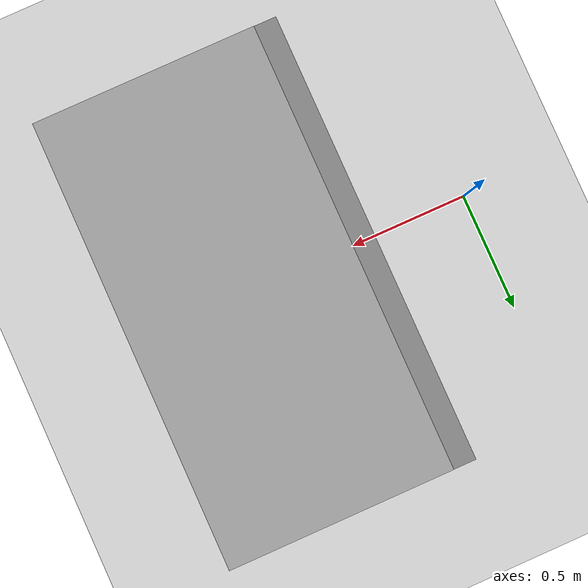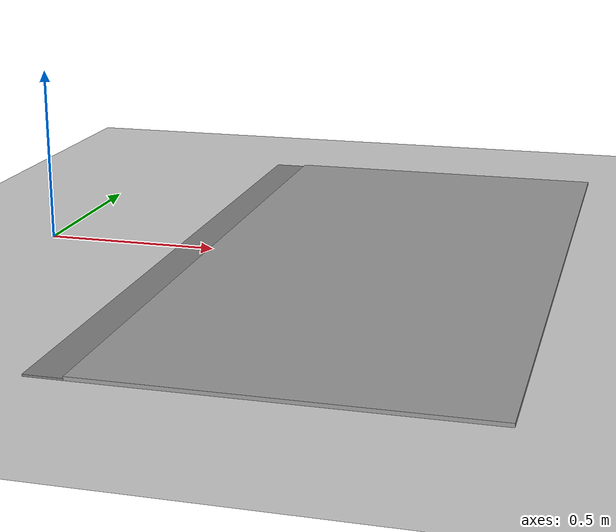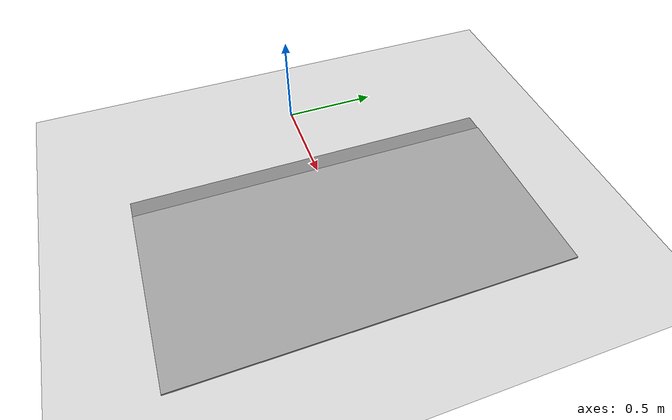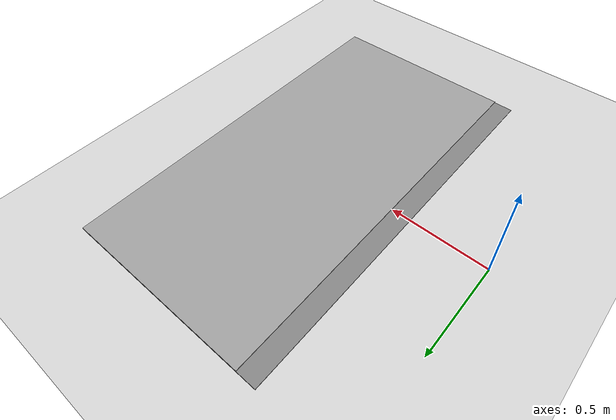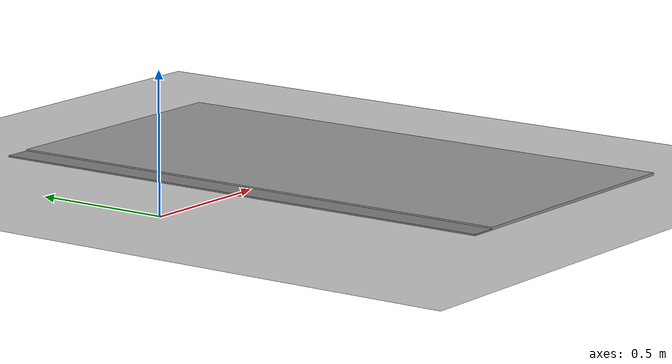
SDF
<?xml version="1.0" ?>

<sdf version="1.6">
  <world name="default">

    <!-- Plugin for simulating physics -->
    <plugin
      filename="gz-sim-physics-system"
      name="gz::sim::systems::Physics">
    </plugin>

    <!-- Plugin for handling user commands -->
    <plugin
      filename="gz-sim-user-commands-system"
      name="gz::sim::systems::UserCommands">
    </plugin>

    <!-- Plugin for broadcasting scene updates -->
    <plugin
      filename="gz-sim-scene-broadcaster-system"
      name="gz::sim::systems::SceneBroadcaster">
    </plugin>

    <!-- Plugin for handling sensors like the LIDAR -->
    <plugin
      filename="gz-sim-sensors-system"
      name="gz::sim::systems::Sensors">
      <render_engine>ogre2</render_engine>
    </plugin>

    <!-- Plugin for IMU -->
    <plugin filename="gz-sim-imu-system"
      name="gz::sim::systems::Imu">
    </plugin>

     <light type="directional" name="sun">
      <cast_shadows>true</cast_shadows>
      <pose>0 0 10 0 0 0</pose>
      <diffuse>1 1 1 1</diffuse>
      <specular>0.5 0.5 0.5 1</specular>
      <attenuation>
        <range>1000</range>
        <constant>0.9</constant>
        <linear>0.01</linear>
        <quadratic>0.001</quadratic>
      </attenuation>
      <direction>-0.5 0.1 -0.9</direction>
    </light>

    <model name="ground_plane">
      <static>true</static>
      <link name="link">
        <collision name="collision">
          <geometry>
            <plane>
              <normal>0 0 1</normal>
              <size>100 100</size>
            </plane>
          </geometry>
          <surface>
            <friction>
              <ode>
                <mu>0.0</mu>
                <mu2>0.0</mu2>
              </ode>
            </friction>
          </surface>
        </collision>
        <visual name="visual">
          <geometry>
            <plane>
              <normal>0 0 1</normal>
              <size>100 100</size>
            </plane>
          </geometry>
          <material>
            <ambient>0.8 0.8 0.8 1</ambient>
            <diffuse>0.8 0.8 0.8 1</diffuse>
            <specular>0.8 0.8 0.8 1</specular>
          </material>
        </visual>
      </link>
    </model>

    <include>
      <uri>model://climbable_step</uri>
      <pose>1.0 0 0 0 0 0</pose>
    </include>

  </world>
</sdf>

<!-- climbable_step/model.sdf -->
<sdf version='1.6'>
  <model name='climbable_step'>
    <static>true</static>
    <link name="link">

      <!-- Lead-in lip: 5 mm high, helps the 32.5 mm wheel start the climb -->
      <collision name="lip_collision">
        <pose>-0.55 0 0.0025 0 0 0</pose>
        <geometry>
          <box><size>0.10 2 0.005</size></box>
        </geometry>
        <surface>
          <friction>
            <ode>
              <mu>1.0</mu>
              <mu2>1.0</mu2>
            </ode>
          </friction>
        </surface>
      </collision>
      <visual name="lip_visual">
        <pose>-0.55 0 0.0025 0 0 0</pose>
        <geometry>
          <box><size>0.10 2 0.005</size></box>
        </geometry>
        <material>
          <ambient>0.5 0.5 0.5 1</ambient>
          <diffuse>0.5 0.5 0.5 1</diffuse>
        </material>
      </visual>

      <!-- Main step: 10 mm high, 1 m deep, 2 m wide -->
      <collision name="collision">
        <pose>0 0 0.005 0 0 0</pose>
        <geometry>
          <box><size>1 2 0.01</size></box>
        </geometry>
        <surface>
          <friction>
            <ode>
              <mu>1.0</mu>
              <mu2>1.0</mu2>
            </ode>
          </friction>
        </surface>
      </collision>
      <visual name="visual">
        <pose>0 0 0.005 0 0 0</pose>
        <geometry>
          <box><size>1 2 0.01</size></box>
        </geometry>
        <material>
          <ambient>0.6 0.6 0.6 1</ambient>
          <diffuse>0.6 0.6 0.6 1</diffuse>
        </material>
      </visual>

    </link>
  </model>
</sdf>
